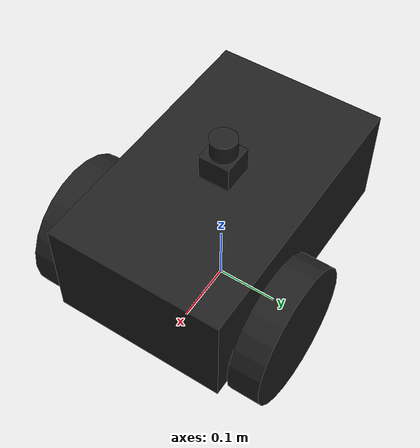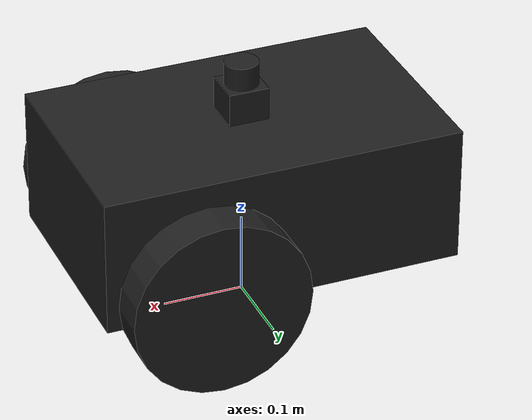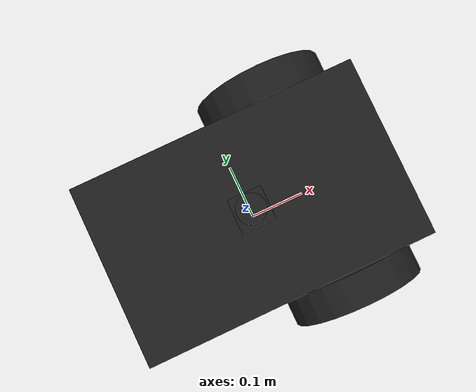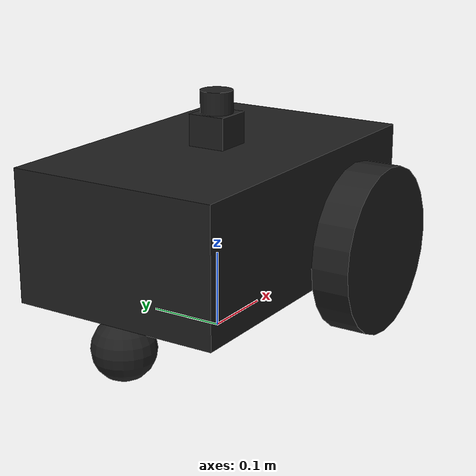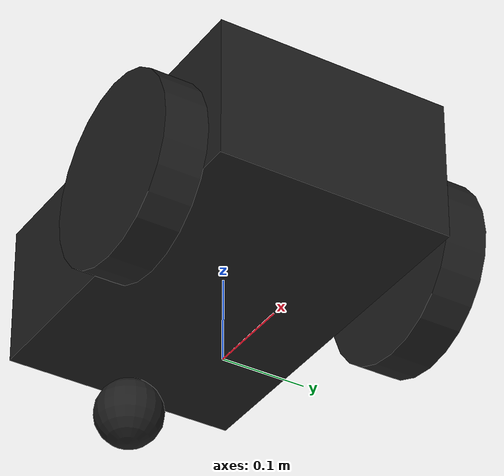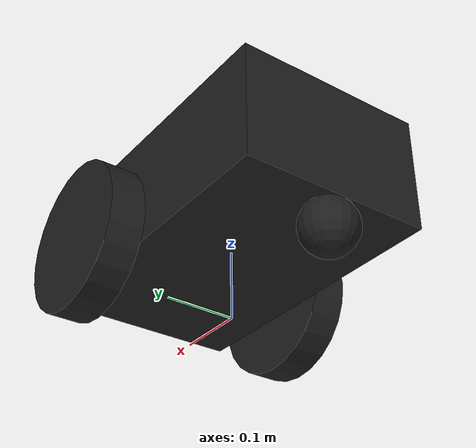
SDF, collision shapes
<?xml version="1.0" ?>
<sdf version="1.5">
  <model name="rubbish_robot">
    <link name="chassis">
      <pose>0 0 0.16 0 0 0</pose>
      <inertial>
        <mass>5.67</mass>
        <inertia>
          <ixx>0.07</ixx>
          <iyy>0.08</iyy>
          <izz>0.10</izz>
          <ixy>0</ixy>
          <ixz>0</ixz>
          <iyz>0</iyz>
        </inertia>
      </inertial>
      <collision name="collision">
        <geometry>
          <box>
            <size>0.445 0.277 0.17</size>
          </box>
        </geometry>
      </collision>
      <collision name="castor_collision">
        <pose>-0.200 0 -0.12 0 0 0</pose>
        <geometry>
          <sphere>
            <radius>0.04</radius>
          </sphere>
        </geometry>
        <surface>
          <friction>
            <ode>
              <mu>0</mu>
              <mu2>0</mu2>
              <slip1>1.0</slip1>
              <slip2>1.0</slip2>
            </ode>
          </friction>
        </surface>
      </collision>
      <visual name="visual">
        <pose>0 0 0.04 0 0 0</pose>
        <geometry>
          <mesh>
            <uri>model://pioneer2dx/meshes/chassis.dae</uri>
          </mesh>
        </geometry>
      </visual>
      <visual name="castor_visual">
        <pose>-0.200 0 -0.12 0 0 0</pose>
        <geometry>
          <sphere>
            <radius>0.04</radius>
          </sphere>
        </geometry>
        <material>
          <script>
            <uri>file://media/materials/scripts/gazebo.material</uri>
            <name>Gazebo/FlatBlack</name>
          </script>
        </material>
      </visual>
    </link>
    <link name="right_wheel">
      <pose>0.1 -.17 0.11 0 1.5707 1.5707</pose>
      <inertial>
        <mass>1.5</mass>
        <inertia>
          <ixx>0.0051</ixx>
          <iyy>0.0051</iyy>
          <izz>0.0090</izz>
          <ixy>0</ixy>
          <ixz>0</ixz>
          <iyz>0</iyz>
        </inertia>
      </inertial>
      <collision name="collision">
        <geometry>
          <cylinder>
            <radius>0.11</radius>
            <length>0.05</length>
          </cylinder>
        </geometry>
        <surface>
          <friction>
            <ode>
              <mu>100000.0</mu>
              <mu2>100000.0</mu2>
              <slip1>0.0</slip1>
              <slip2>0.0</slip2>
            </ode>
          </friction>
        </surface>
      </collision>
      <visual name="visual">
        <geometry>
          <cylinder>
            <radius>0.11</radius>
            <length>0.05</length>
          </cylinder>
        </geometry>
        <material>
          <script>
            <uri>file://media/materials/scripts/gazebo.material</uri>
            <name>Gazebo/FlatBlack</name>
          </script>
        </material>
      </visual>
    </link>
    <link name="left_wheel">
      <pose>0.1 .17 0.11 0 1.5707 1.5707</pose>
      <inertial>
        <mass>1.5</mass>
        <inertia>
          <ixx>0.0051</ixx>
          <iyy>0.0051</iyy>
          <izz>0.0090</izz>
          <ixy>0</ixy>
          <ixz>0</ixz>
          <iyz>0</iyz>
        </inertia>
      </inertial>
      <collision name="collision">
        <geometry>
          <cylinder>
            <radius>0.11</radius>
            <length>0.05</length>
          </cylinder>
        </geometry>
        <surface>
          <friction>
            <ode>
              <mu>100000.0</mu>
              <mu2>100000.0</mu2>
              <slip1>0.0</slip1>
              <slip2>0.0</slip2>
            </ode>
          </friction>
        </surface>
      </collision>
      <visual name="visual">
        <geometry>
          <cylinder>
            <radius>0.11</radius>
            <length>0.05</length>
          </cylinder>
        </geometry>
        <material>
          <script>
            <uri>file://media/materials/scripts/gazebo.material</uri>
            <name>Gazebo/FlatBlack</name>
          </script>
        </material>
      </visual>
    </link>
    <joint type="revolute" name="left_wheel_hinge">
      <pose>0 0 -0.03 0 0 0</pose>
      <child>left_wheel</child>
      <parent>chassis</parent>
      <axis>
        <xyz>0 1 0</xyz>
        <use_parent_model_frame>true</use_parent_model_frame>
      </axis>
    </joint>
    <joint type="revolute" name="right_wheel_hinge">
      <pose>0 0 0.03 0 0 0</pose>
      <child>right_wheel</child>
      <parent>chassis</parent>
      <axis>
        <xyz>0 1 0</xyz>
        <use_parent_model_frame>true</use_parent_model_frame>
      </axis>
    </joint>
<plugin name='differential_drive_controller' filename='libgazebo_ros_diff_drive.so'>
      <alwaysOn>true</alwaysOn>
      <updateRate>100</updateRate>
      <leftJoint>base_right_wheel_joint</leftJoint>
      <rightJoint>base_left_wheel_joint</rightJoint>
      <wheelSeparation>0.34</wheelSeparation>
      <wheelDiameter>0.22</wheelDiameter>
      <torque>5</torque>
      <commandTopic>cmd_vel</commandTopic>
      <odometryTopic>odom</odometryTopic>
      <odometryFrame>odom</odometryFrame>
      <robotBaseFrame>base_link</robotBaseFrame>
      <robotNamespace>/</robotNamespace>
      <publishWheelTF>true</publishWheelTF>
      <publishWheelJointState>true</publishWheelJointState>
      <wheelAcceleration>0</wheelAcceleration>
      <wheelTorque>5</wheelTorque>
      <rosDebugLevel>na</rosDebugLevel>
      <legacyMode>true</legacyMode>
      <publishTf>1</publishTf>
    </plugin>
<link name="lidar">
      <pose>0 0 0.28 0 0 0</pose>
      <inertial>
        <mass>1.5</mass>
        <inertia>
          <ixx>0.0051</ixx>
          <iyy>0.0051</iyy>
          <izz>0.0090</izz>
          <ixy>0</ixy>
          <ixz>0</ixz>
          <iyz>0</iyz>
        </inertia>
      </inertial>
      <collision name="collision-base">
        <pose>0 0 -0.0145 0 0 0</pose>
        <geometry>
          <box>
            <size>0.05 0.05 0.041</size>
          </box>
        </geometry>
      </collision>
      <collision name="collision-top">
        <pose>0 0 0.0205 0 0 0</pose>
        <geometry>
          <cylinder>
            <radius>0.021</radius>
            <length>0.029</length>
          </cylinder>
        </geometry>
      </collision>
      <sensor name="laser" type="ray">
        <pose>0.01 0 0.0175 0 -0 0</pose>
        <ray>
          <scan>
            <horizontal>
              <samples>720</samples>
              <resolution>1</resolution>
              <min_angle>-3.14</min_angle>
              <max_angle>3.14</max_angle>
            </horizontal>
          </scan>
          <range>
            <min>0.1</min>
            <max>10</max>
            <resolution>0.01</resolution>
          </range>
        </ray>
        <plugin name="laser" filename="libRayPlugin.so" />
        <always_on>1</always_on>
        <update_rate>30</update_rate>
        <visualize>true</visualize>
      </sensor>
      <visual name="visual">
        <geometry>
          <cylinder>
            <radius>0.10</radius>
            <length>0.05</length>
          </cylinder>
        </geometry>
        <material>
          <script>
            <uri>file://media/materials/scripts/gazebo.material</uri>
            <name>Gazebo/FlatBlack</name>
          </script>
        </material>
      </visual>
    </link>
    <joint type="fixed" name="lidar_joint">
      <pose>0 0 0.0 0 0 0</pose>
      <child>lidar</child>
      <parent>chassis</parent>
      <axis>
        <xyz>0 0 0</xyz>
        <use_parent_model_frame>true</use_parent_model_frame>
      </axis>
    </joint>

<link name="camera">
	<pose>0.165895 0.001365 0.163495 0 0 0</pose>
      <inertial>
        <mass>0.1</mass>
        <inertia>
          <ixx>0.000166667</ixx>
          <iyy>0.000166667</iyy>
          <izz>0.000166667</izz>
        </inertia>
      </inertial>
      <collision name="collision">
        <geometry>
          <box>
            <size>0.1 0.1 0.1</size>
          </box>
        </geometry>
      </collision>
      <visual name="visual">
        <geometry>
          <box>
            <size>0.1 0.1 0.1</size>
          </box>
        </geometry>
      </visual>
      <sensor name="camera" type="camera">
        <camera>
          <horizontal_fov>1.047</horizontal_fov>
          <image>
            <width>320</width>
            <height>240</height>
          </image>
          <clip>
            <near>0.1</near>
            <far>100</far>
          </clip>
        </camera>
        <always_on>1</always_on>
        <update_rate>30</update_rate>
        <visualize>true</visualize>
      </sensor>
    </link>

   <joint type="fixed" name="camera_joint">
      <pose>0 0 3 0 0 0</pose>
      <child>camera</child>
      <parent>chassis</parent>
      <axis>
        <xyz>0 0 3</xyz>
        <use_parent_model_frame>true</use_parent_model_frame>
      </axis>
    </joint>
<plugin name='gazebo_ros_control' filename='libgazebo_ros_control.so'>
      <robotNamespace>/p3dx</robotNamespace>
    </plugin>
    <plugin name='p3d_base_controller' filename='libgazebo_ros_p3d.so'>
      <alwaysOn>true</alwaysOn>
      <updateRate>100.0</updateRate>
      <bodyName>base_link</bodyName>
      <topicName>p3dx/base_pose_ground_truth</topicName>
      <gaussianNoise>0.01</gaussianNoise>
      <frameName>map</frameName>
      <xyzOffsets>0 0 0</xyzOffsets>
      <rpyOffsets>0 0 0</rpyOffsets>
      <robotNamespace>/</robotNamespace>
    </plugin>

  </model>
</sdf>
